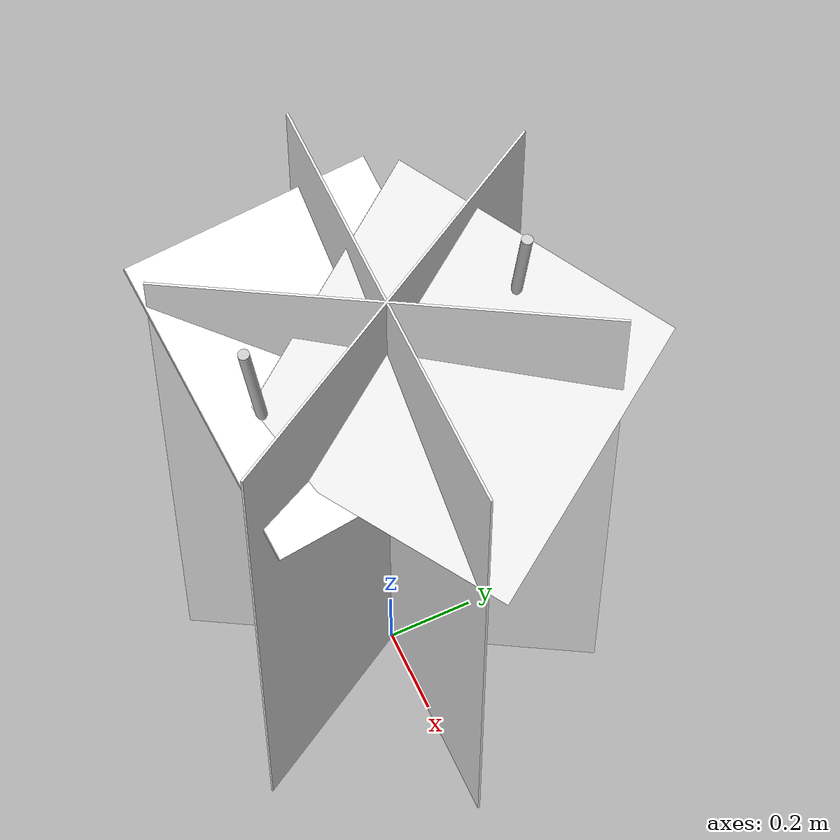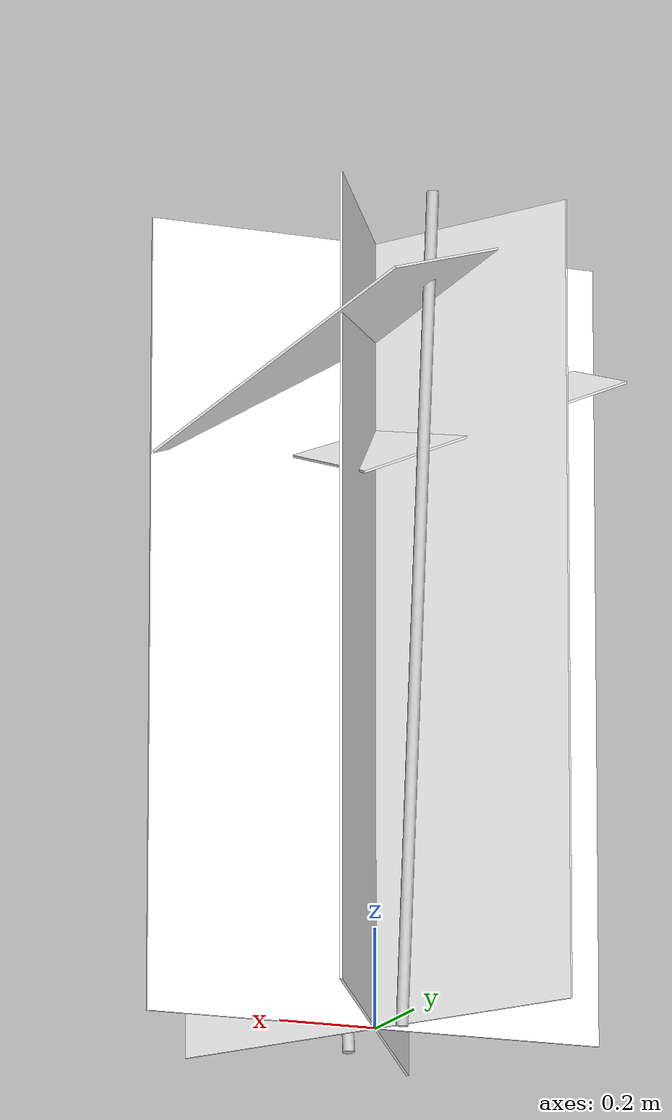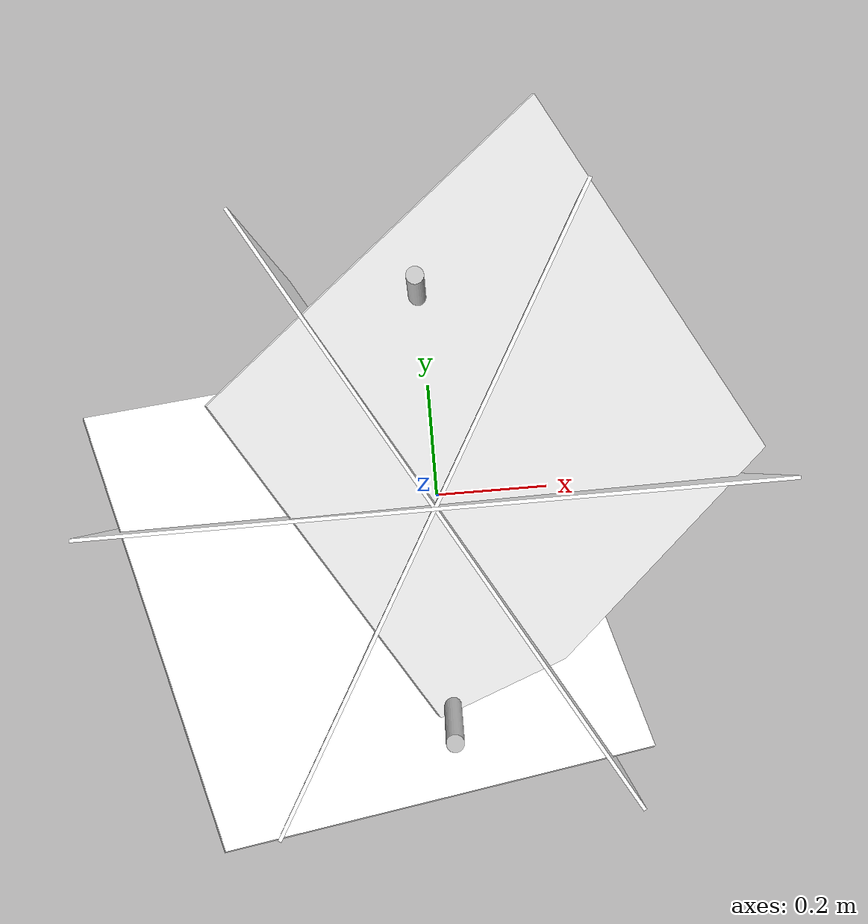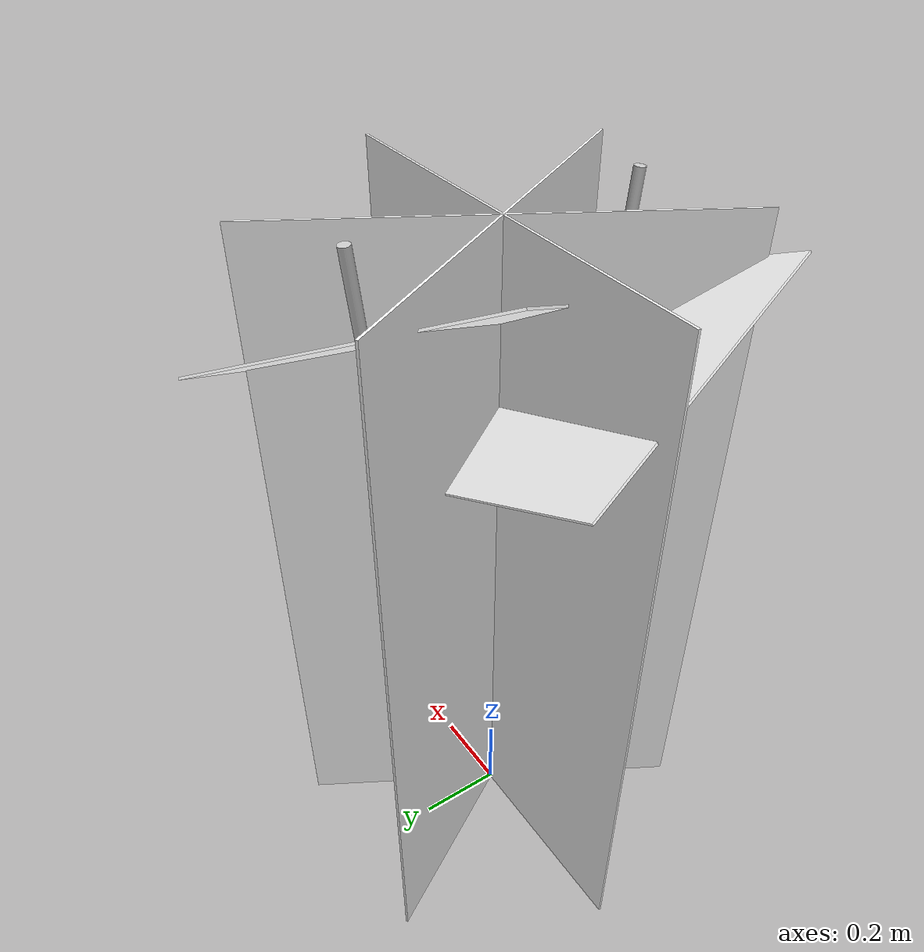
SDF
<?xml version="1.0" ?>
<sdf version="1.9">
  <model name="cucumber_plant">
    <static>true</static>

    <link name="plant_link">
      <pose>0 0 0 0 0 0</pose>

      <!-- Vertical Trellis Poles -->
      <visual name="trellis_pole_left">
        <pose>0 -0.22 0.8 0.1 0 0</pose>
        <geometry><cylinder><radius>0.012</radius><length>1.65</length></cylinder></geometry>
        <material>
          <ambient>0.65 0.65 0.65 1</ambient>
          <diffuse>0.78 0.78 0.78 1</diffuse>
        </material>
      </visual>
      <visual name="trellis_pole_right">
        <pose>0 0.22 0.8 -0.1 0 0</pose>
        <geometry><cylinder><radius>0.012</radius><length>1.65</length></cylinder></geometry>
        <material>
          <ambient>0.65 0.65 0.65 1</ambient>
          <diffuse>0.78 0.78 0.78 1</diffuse>
        </material>
      </visual>

      <!-- PHOTOREALISTIC TEXTURED CROSS-BILLBOARDS (3-Way Star)-->
      <!-- Plane 1: 0 degrees -->
      <visual name="foliage_plane_0deg">
        <pose>0 0 0.8 0 0 0</pose>
        <geometry>
          <box><size>0.95 0.005 1.6</size></box>
        </geometry>
        <material>
          <ambient>1.0 1.0 1.0 1.0</ambient>
          <diffuse>1.0 1.0 1.0 1.0</diffuse>
          <pbr>
            <metal>
              <albedo_map>model://cucumber_plant/materials/textures/cucumber_real.png</albedo_map>
              <roughness>0.6</roughness>
              <metalness>0.0</metalness>
            </metal>
          </pbr>
        </material>
      </visual>

      <!-- Plane 2: 60 degrees -->
      <visual name="foliage_plane_60deg">
        <pose>0 0 0.8 0 0 1.047</pose>
        <geometry>
          <box><size>0.95 0.005 1.6</size></box>
        </geometry>
        <material>
          <ambient>1.0 1.0 1.0 1.0</ambient>
          <diffuse>1.0 1.0 1.0 1.0</diffuse>
          <pbr>
            <metal>
              <albedo_map>model://cucumber_plant/materials/textures/cucumber_real.png</albedo_map>
              <roughness>0.6</roughness>
              <metalness>0.0</metalness>
            </metal>
          </pbr>
        </material>
      </visual>

      <!-- Plane 3: 120 degrees -->
      <visual name="foliage_plane_120deg">
        <pose>0 0 0.8 0 0 2.094</pose>
        <geometry>
          <box><size>0.95 0.005 1.6</size></box>
        </geometry>
        <material>
          <ambient>1.0 1.0 1.0 1.0</ambient>
          <diffuse>1.0 1.0 1.0 1.0</diffuse>
          <pbr>
            <metal>
              <albedo_map>model://cucumber_plant/materials/textures/cucumber_real.png</albedo_map>
              <roughness>0.6</roughness>
              <metalness>0.0</metalness>
            </metal>
          </pbr>
        </material>
      </visual>

      <!-- Top-Down Angled Canopy Quads (Optimized for Drone Aerial Camera) -->
      <visual name="aerial_canopy_quad_1">
        <pose>0.1 0.1 1.35 0.45 0.35 0.7</pose>
        <geometry><box><size>0.65 0.65 0.005</size></box></geometry>
        <material>
          <ambient>1.0 1.0 1.0 1.0</ambient>
          <diffuse>1.0 1.0 1.0 1.0</diffuse>
          <pbr>
            <metal>
              <albedo_map>model://cucumber_plant/materials/textures/cucumber_real.png</albedo_map>
              <roughness>0.6</roughness>
              <metalness>0.0</metalness>
            </metal>
          </pbr>
        </material>
      </visual>
      <visual name="aerial_canopy_quad_2">
        <pose>-0.1 -0.1 1.3 -0.45 -0.35 -1.3</pose>
        <geometry><box><size>0.65 0.65 0.005</size></box></geometry>
        <material>
          <ambient>1.0 1.0 1.0 1.0</ambient>
          <diffuse>1.0 1.0 1.0 1.0</diffuse>
          <pbr>
            <metal>
              <albedo_map>model://cucumber_plant/materials/textures/cucumber_real.png</albedo_map>
              <roughness>0.6</roughness>
              <metalness>0.0</metalness>
            </metal>
          </pbr>
        </material>
      </visual>

      <!-- Collision Volume -->
      <collision name="plant_collision">
        <pose>0 0 0.8 0 0 0</pose>
        <geometry><cylinder><radius>0.38</radius><length>1.6</length></cylinder></geometry>
      </collision>
    </link>
  </model>
</sdf>
